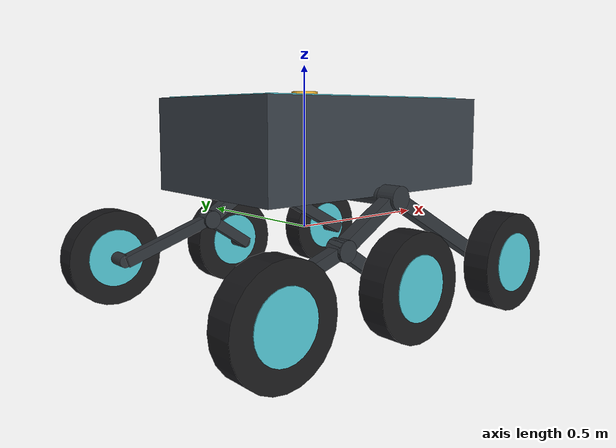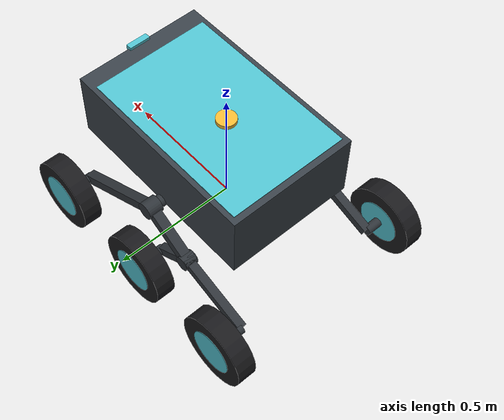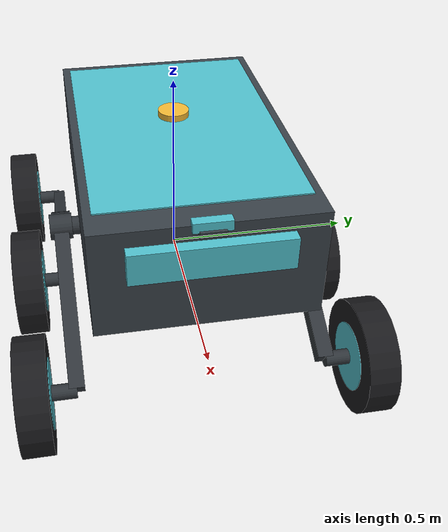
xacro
<?xml version="1.0"?>
<robot xmlns:xacro="http://ros.org/wiki/xacro" name="athena">

  <xacro:arg name="sim" default="false"/>
  <xacro:property name="is_sim" value="$(arg sim)"/>

  <!-- Chassis. Measured for Athena competition rover:
       Avionics/chassis box is 28cm high, 54cm wide, 85cm long.
       Base_link is origin; ground is at -base_height = -0.25m. -->
  <xacro:property name="base_length"     value="0.85"/>  <!-- x, front to back -->
  <xacro:property name="base_width"      value="0.54"/>  <!-- y, side to side  -->
  <xacro:property name="base_height"     value="0.25"/>  <!-- ground to base_link with 30cm wheels -->
  <xacro:property name="chassis_height"  value="0.28"/>  <!-- 28 cm chassis box height -->
  <xacro:property name="track_width"     value="0.85"/>  <!-- wheel centre to centre -->
  <xacro:property name="suspension_y"    value="0.32"/>  <!-- inner suspension plane Y offset (32cm from centre) -->
  <xacro:property name="spindle_length"  value="${track_width/2 - suspension_y}"/>  <!-- 0.105m axle spindle stub length -->

  <xacro:property name="camera_x"     value="0.50"/>
  <xacro:property name="camera_z"     value="0.40"/>
  <!-- Camera tilt about its own left axis, radians. 0.0 for level mounting. -->
  <xacro:property name="camera_pitch" value="0.0"/>

  <!-- Pixhawk IMU: inside front avionics bay, 15 cm below depth camera. -->
  <xacro:property name="imu_x"        value="${camera_x}"/>
  <xacro:property name="imu_z"        value="${camera_z - 0.15}"/>
  <xacro:property name="imu_roll"     value="0.0"/>
  <xacro:property name="imu_pitch"    value="0.0"/>
  <xacro:property name="imu_yaw"      value="0.0"/>

  <!-- GPS antenna: mounted on top deck of chassis at z = 0.41 m. -->
  <xacro:property name="gps_x"        value="0.0"/>
  <xacro:property name="gps_y"        value="0.0"/>
  <xacro:property name="gps_z"        value="${camera_z + 0.01}"/>

  <!-- Wheel dimensions: 30 cm diameter (radius 0.15 m), 8 cm width -->
  <xacro:property name="wheel_radius"    value="0.15"/>  <!-- 30 cm diameter -->
  <xacro:property name="wheel_width"     value="0.08"/>  <!-- 8 cm width -->
  <xacro:property name="wheel_x"         value="0.45"/>  <!-- front/rear axle offset -->

  <!-- Rocker-Bogie main pivot: at the lower end of the chassis (28 cm below camera) -->
  <xacro:property name="rocker_pivot_x"  value="0.05"/>
  <xacro:property name="rocker_pivot_z"  value="${camera_z - chassis_height}"/>

  <material name="athena_body">  <color rgba="0.22 0.25 0.28 1.0"/></material>
  <material name="athena_accent"><color rgba="0.31 0.75 0.80 1.0"/></material>
  <material name="athena_wheel"> <color rgba="0.10 0.10 0.11 1.0"/></material>
  <material name="athena_gps">   <color rgba="0.95 0.72 0.20 1.0"/></material>
  <material name="athena_rocker"><color rgba="0.18 0.20 0.22 1.0"/></material>

  <!-- ==== chassis ======================================================= -->

  <link name="base_link">
    <!-- Main central avionics & battery chassis body (28cm high) -->
    <visual>
      <origin xyz="0.075 0 0.26" rpy="0 0 0"/>
      <geometry><box size="${base_length} ${base_width} ${chassis_height}"/></geometry>
      <material name="athena_body"/>
    </visual>
    <!-- Top equipment deck -->
    <visual>
      <origin xyz="0.05 0 0.401" rpy="0 0 0"/>
      <geometry><box size="0.75 0.50 0.005"/></geometry>
      <material name="athena_accent"/>
    </visual>
    <!-- Transverse rocker pivot axle tube extending across lower end of chassis from chassis to rocker -->
    <visual>
      <origin xyz="${rocker_pivot_x} 0 ${rocker_pivot_z}" rpy="1.5708 0 0"/>
      <geometry><cylinder radius="0.025" length="${suspension_y * 2}"/></geometry>
      <material name="athena_rocker"/>
    </visual>
    <xacro:if value="${is_sim}">
      <collision>
        <origin xyz="0.075 0 0.26" rpy="0 0 0"/>
        <geometry><box size="${base_length} ${base_width} ${chassis_height}"/></geometry>
      </collision>
      <inertial>
        <mass value="35.0"/>
        <origin xyz="0.05 0 0.24" rpy="0 0 0"/>
        <inertia ixx="${35.0 * (base_width*base_width + chassis_height*chassis_height) / 12.0}"
                 ixy="0.0" ixz="0.0"
                 iyy="${35.0 * (base_length*base_length + chassis_height*chassis_height) / 12.0}"
                 iyz="0.0"
                 izz="${35.0 * (base_length*base_length + base_width*base_width) / 12.0}"/>
      </inertial>
    </xacro:if>
  </link>

  <xacro:if value="${is_sim}">
    <gazebo reference="base_link">
      <material>Gazebo/DarkGrey</material>
      <mu1>0.5</mu1>
      <mu2>0.5</mu2>
    </gazebo>
  </xacro:if>

  <link name="base_footprint"/>
  <joint name="base_footprint_joint" type="fixed">
    <parent link="base_link"/>
    <child  link="base_footprint"/>
    <origin xyz="0 0 ${-base_height}" rpy="0 0 0"/>
  </joint>

  <!-- Front nose marker block for unmistakable orientation -->
  <link name="nose_marker">
    <visual>
      <geometry><box size="0.04 ${base_width * 0.7} 0.08"/></geometry>
      <material name="athena_accent"/>
    </visual>
    <xacro:if value="${is_sim}">
      <collision>
        <geometry><box size="0.04 ${base_width * 0.7} 0.08"/></geometry>
      </collision>
    </xacro:if>
  </link>
  <joint name="nose_joint" type="fixed">
    <parent link="base_link"/>
    <child  link="nose_marker"/>
    <origin xyz="0.51 0 0.32" rpy="0 0 0"/>
  </joint>

  <!-- ==== rocker-bogie suspension and six wheels ====================== -->

  <xacro:macro name="rocker_bogie_assembly" params="side y_sign">
    <!-- Rocker link and main pivot joint -->
    <link name="rocker_${side}">
      <!-- Pivot hub cylinder -->
      <visual>
        <origin xyz="0 0 0" rpy="1.5708 0 0"/>
        <geometry><cylinder radius="0.035" length="0.06"/></geometry>
        <material name="athena_rocker"/>
      </visual>
      <!-- Beam from pivot forward and down to front wheel -->
      <visual>
        <origin xyz="0.20 0 -0.11" rpy="0 0.502 0"/>
        <geometry><box size="0.456 0.04 0.04"/></geometry>
        <material name="athena_rocker"/>
      </visual>
      <!-- Axle spindle stub connecting rocker arm to front wheel hub -->
      <visual>
        <origin xyz="0.40 ${y_sign * spindle_length/2} -0.22" rpy="1.5708 0 0"/>
        <geometry><cylinder radius="0.02" length="${spindle_length}"/></geometry>
        <material name="athena_rocker"/>
      </visual>
      <!-- Beam from pivot backward and down to bogie joint -->
      <visual>
        <origin xyz="-0.10 0 -0.06" rpy="0 -0.540 0"/>
        <geometry><box size="0.233 0.04 0.04"/></geometry>
        <material name="athena_rocker"/>
      </visual>
      <!-- Bogie joint housing hub -->
      <visual>
        <origin xyz="-0.20 0 -0.12" rpy="1.5708 0 0"/>
        <geometry><cylinder radius="0.03" length="0.05"/></geometry>
        <material name="athena_rocker"/>
      </visual>
      <xacro:if value="${is_sim}">
        <collision>
          <origin xyz="0.20 0 -0.11" rpy="0 0.502 0"/>
          <geometry><box size="0.456 0.04 0.04"/></geometry>
        </collision>
        <collision>
          <origin xyz="0.40 ${y_sign * (spindle_length - wheel_width/2 - 0.005)/2} -0.22" rpy="1.5708 0 0"/>
          <geometry><cylinder radius="0.02" length="${spindle_length - wheel_width/2 - 0.005}"/></geometry>
        </collision>
        <inertial>
          <mass value="3.0"/>
          <origin xyz="0.10 0 -0.08" rpy="0 0 0"/>
          <inertia ixx="0.02" ixy="0.0" ixz="0.0" iyy="0.08" iyz="0.0" izz="0.08"/>
        </inertial>
      </xacro:if>
    </link>

    <xacro:unless value="${is_sim}">
      <joint name="rocker_${side}_joint" type="fixed">
        <parent link="base_link"/>
        <child  link="rocker_${side}"/>
        <origin xyz="${rocker_pivot_x} ${y_sign * suspension_y} ${rocker_pivot_z}" rpy="0 0 0"/>
      </joint>
    </xacro:unless>

    <xacro:if value="${is_sim}">
      <joint name="rocker_${side}_joint" type="revolute">
        <parent link="base_link"/>
        <child  link="rocker_${side}"/>
        <origin xyz="${rocker_pivot_x} ${y_sign * suspension_y} ${rocker_pivot_z}" rpy="0 0 0"/>
        <axis xyz="0 1 0"/>
        <limit lower="-0.45" upper="0.45" effort="200.0" velocity="5.0"/>
        <dynamics damping="25.0" friction="1.0"/>
      </joint>
      <gazebo reference="rocker_${side}_joint">
        <implicitSpringDamper>true</implicitSpringDamper>
        <springStiffness>600.0</springStiffness>
        <springReference>0.0</springReference>
      </gazebo>
    </xacro:if>

    <!-- Bogie link and pivot joint -->
    <link name="bogie_${side}">
      <!-- Bogie center pivot hub -->
      <visual>
        <origin xyz="0 0 0" rpy="1.5708 0 0"/>
        <geometry><cylinder radius="0.03" length="0.055"/></geometry>
        <material name="athena_rocker"/>
      </visual>
      <!-- Beam from bogie pivot forward and down to mid wheel -->
      <visual>
        <origin xyz="0.075 0 -0.05" rpy="0 0.588 0"/>
        <geometry><box size="0.18 0.035 0.035"/></geometry>
        <material name="athena_rocker"/>
      </visual>
      <!-- Mid wheel axle spindle stub connecting bogie arm to wheel hub -->
      <visual>
        <origin xyz="0.15 ${y_sign * spindle_length/2} -0.10" rpy="1.5708 0 0"/>
        <geometry><cylinder radius="0.02" length="${spindle_length}"/></geometry>
        <material name="athena_rocker"/>
      </visual>
      <!-- Beam from bogie pivot backward and down to rear wheel -->
      <visual>
        <origin xyz="-0.15 0 -0.05" rpy="0 -0.322 0"/>
        <geometry><box size="0.316 0.035 0.035"/></geometry>
        <material name="athena_rocker"/>
      </visual>
      <!-- Rear wheel axle spindle stub connecting bogie arm to wheel hub -->
      <visual>
        <origin xyz="-0.30 ${y_sign * spindle_length/2} -0.10" rpy="1.5708 0 0"/>
        <geometry><cylinder radius="0.02" length="${spindle_length}"/></geometry>
        <material name="athena_rocker"/>
      </visual>
      <xacro:if value="${is_sim}">
        <collision>
          <origin xyz="-0.075 0 -0.05" rpy="0 0 0"/>
          <geometry><box size="0.48 0.035 0.035"/></geometry>
        </collision>
        <collision>
          <origin xyz="0.15 ${y_sign * (spindle_length - wheel_width/2 - 0.005)/2} -0.10" rpy="1.5708 0 0"/>
          <geometry><cylinder radius="0.02" length="${spindle_length - wheel_width/2 - 0.005}"/></geometry>
        </collision>
        <collision>
          <origin xyz="-0.30 ${y_sign * (spindle_length - wheel_width/2 - 0.005)/2} -0.10" rpy="1.5708 0 0"/>
          <geometry><cylinder radius="0.02" length="${spindle_length - wheel_width/2 - 0.005}"/></geometry>
        </collision>
        <inertial>
          <mass value="2.5"/>
          <origin xyz="-0.075 0 -0.05" rpy="0 0 0"/>
          <inertia ixx="0.015" ixy="0.0" ixz="0.0" iyy="0.05" iyz="0.0" izz="0.05"/>
        </inertial>
      </xacro:if>
    </link>

    <xacro:unless value="${is_sim}">
      <joint name="bogie_${side}_joint" type="fixed">
        <parent link="rocker_${side}"/>
        <child  link="bogie_${side}"/>
        <origin xyz="-0.20 0.0 -0.12" rpy="0 0 0"/>
      </joint>
    </xacro:unless>

    <xacro:if value="${is_sim}">
      <joint name="bogie_${side}_joint" type="revolute">
        <parent link="rocker_${side}"/>
        <child  link="bogie_${side}"/>
        <origin xyz="-0.20 0.0 -0.12" rpy="0 0 0"/>
        <axis xyz="0 1 0"/>
        <limit lower="-0.45" upper="0.45" effort="100.0" velocity="5.0"/>
        <dynamics damping="1.0" friction="0.5"/>
      </joint>
    </xacro:if>

    <!-- Front Wheel attached to Rocker (x=0.45, z=-0.10 in base_link) -->
    <xacro:wheel_instance name="wheel_front_${side}" parent="rocker_${side}"
                          x="0.40" y="${y_sign * spindle_length}" z="-0.22"/>

    <!-- Mid Wheel attached to Bogie (x=0.00, z=-0.10 in base_link) -->
    <xacro:wheel_instance name="wheel_mid_${side}" parent="bogie_${side}"
                          x="0.15" y="${y_sign * spindle_length}" z="-0.10"/>

    <!-- Rear Wheel attached to Bogie (x=-0.45, z=-0.10 in base_link) -->
    <xacro:wheel_instance name="wheel_rear_${side}" parent="bogie_${side}"
                          x="-0.30" y="${y_sign * spindle_length}" z="-0.10"/>
  </xacro:macro>

  <!-- Wheel instance macro (30 cm diameter, 3.5 kg mass) -->
  <xacro:macro name="wheel_instance" params="name parent x y z">
    <link name="${name}">
      <!-- Outer treaded tire -->
      <visual>
        <geometry><cylinder radius="${wheel_radius}" length="${wheel_width}"/></geometry>
        <material name="athena_wheel"/>
      </visual>
      <!-- Inner accent hubcap -->
      <visual>
        <geometry><cylinder radius="${wheel_radius * 0.60}" length="${wheel_width + 0.004}"/></geometry>
        <material name="athena_accent"/>
      </visual>
      <xacro:if value="${is_sim}">
        <collision>
          <geometry><cylinder radius="${wheel_radius}" length="${wheel_width}"/></geometry>
        </collision>
        <inertial>
          <mass value="3.5"/>
          <origin xyz="0 0 0" rpy="0 0 0"/>
          <inertia ixx="0.0215" ixy="0.0" ixz="0.0"
                   iyy="0.0215" iyz="0.0"
                   izz="0.0394"/>
        </inertial>
      </xacro:if>
    </link>

    <xacro:unless value="${is_sim}">
      <joint name="${name}_joint" type="fixed">
        <parent link="${parent}"/>
        <child  link="${name}"/>
        <origin xyz="${x} ${y} ${z}" rpy="1.5708 0 0"/>
      </joint>
    </xacro:unless>

    <xacro:if value="${is_sim}">
      <joint name="${name}_joint" type="continuous">
        <parent link="${parent}"/>
        <child  link="${name}"/>
        <origin xyz="${x} ${y} ${z}" rpy="1.5708 0 0"/>
        <axis xyz="0 0 -1"/>
        <dynamics damping="0.08" friction="0.05"/>
        <limit effort="50.0" velocity="20.0"/>
      </joint>
      <gazebo reference="${name}">
        <material>Gazebo/Black</material>
        <mu1>1.0</mu1>
        <mu2>0.2</mu2>
        <kp>1000000.0</kp>
        <kd>100.0</kd>
        <minDepth>0.005</minDepth>
      </gazebo>
    </xacro:if>
  </xacro:macro>

  <xacro:rocker_bogie_assembly side="left"  y_sign="1"/>
  <xacro:rocker_bogie_assembly side="right" y_sign="-1"/>

  <!-- ==== sensors ======================================================= -->

  <!-- RealSense D435i mounted at top of chassis at front centre -->
  <link name="camera_link">
    <!-- Camera head -->
    <visual>
      <origin xyz="0 0 0" rpy="0 0 0"/>
      <geometry><box size="0.025 0.09 0.025"/></geometry>
      <material name="athena_accent"/>
    </visual>
    <!-- Camera mount pedestal to chassis top deck -->
    <visual>
      <origin xyz="0 0 -0.015" rpy="0 0 0"/>
      <geometry><box size="0.04 0.06 0.015"/></geometry>
      <material name="athena_body"/>
    </visual>
  </link>
  <joint name="camera_joint" type="fixed">
    <parent link="base_link"/>
    <child  link="camera_link"/>
    <origin xyz="${camera_x} 0 ${camera_z}" rpy="0 ${camera_pitch} 0"/>
  </joint>

  <link name="imu_link"/>
  <joint name="imu_joint" type="fixed">
    <parent link="base_link"/>
    <child  link="imu_link"/>
    <origin xyz="${imu_x} 0 ${imu_z}"
            rpy="${imu_roll} ${imu_pitch} ${imu_yaw}"/>
  </joint>

  <link name="gps_link">
    <visual>
      <geometry><cylinder radius="0.04" length="0.02"/></geometry>
      <material name="athena_gps"/>
    </visual>
  </link>
  <joint name="gps_joint" type="fixed">
    <parent link="base_link"/>
    <child  link="gps_link"/>
    <origin xyz="${gps_x} ${gps_y} ${gps_z}" rpy="0 0 0"/>
  </joint>

</robot>
